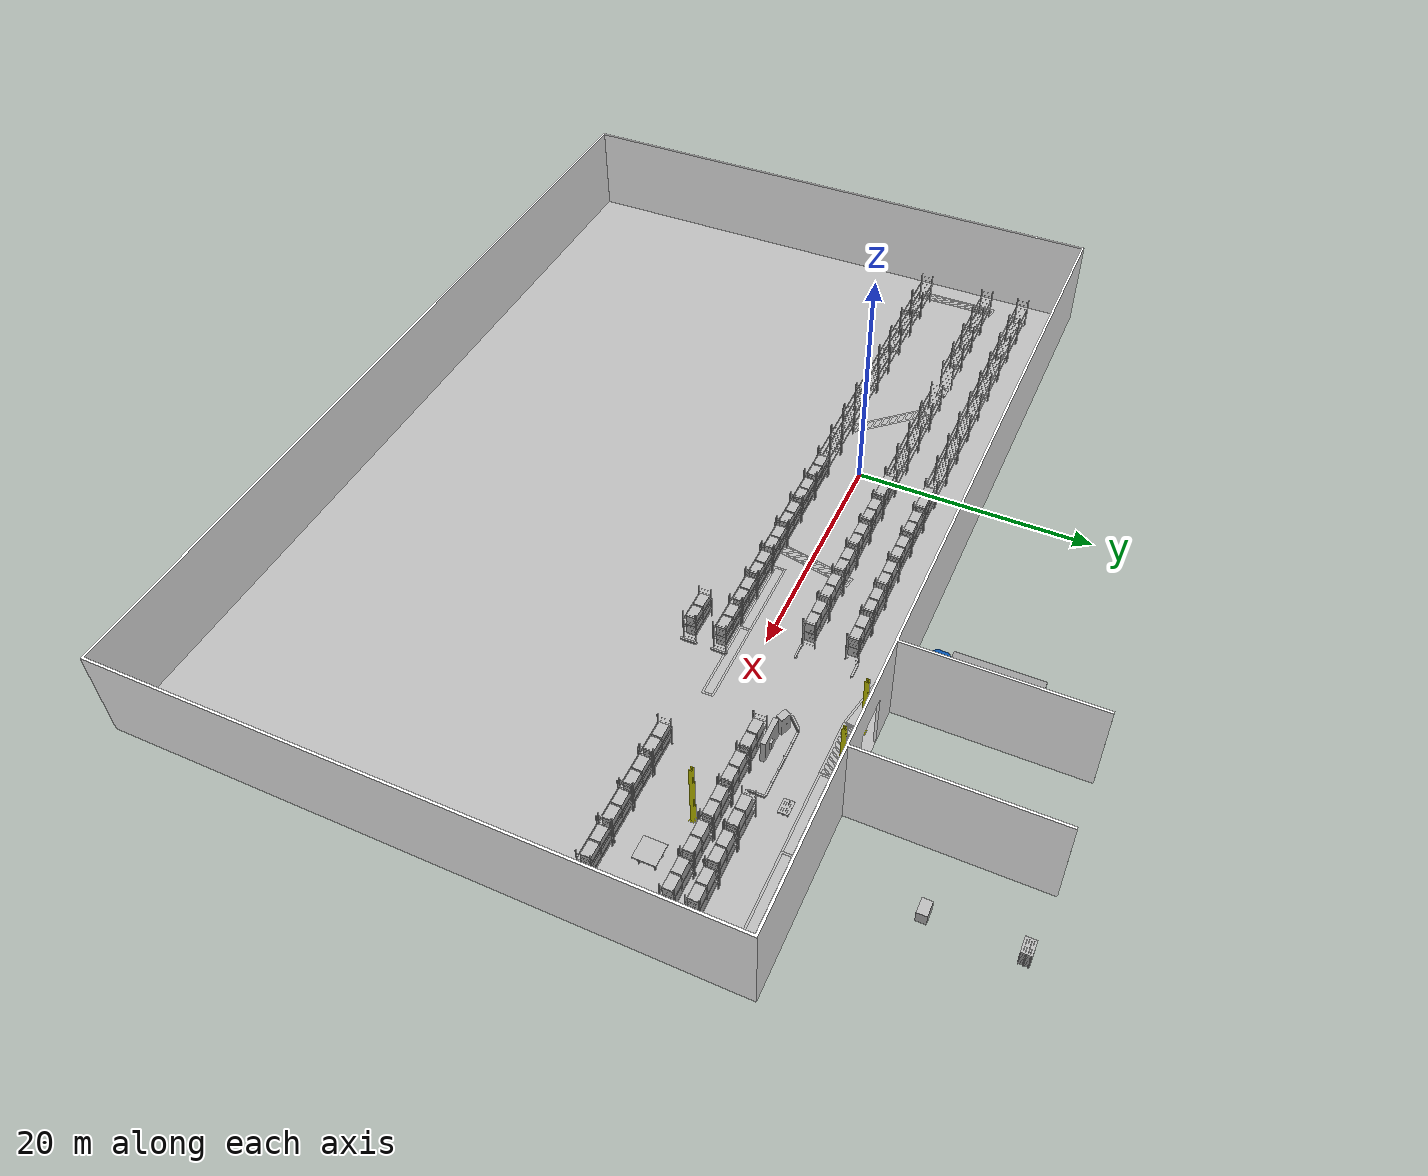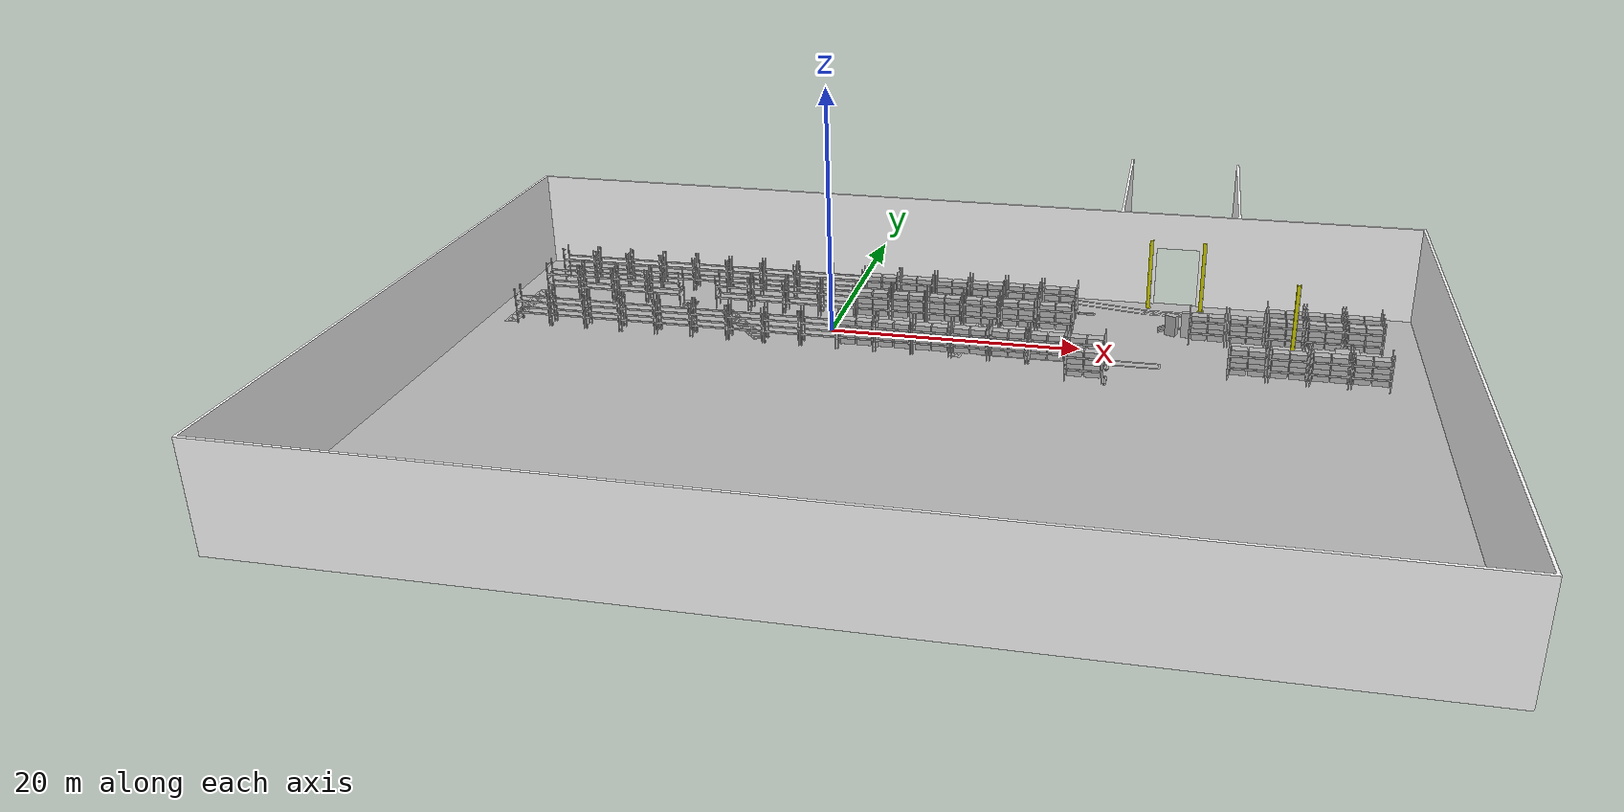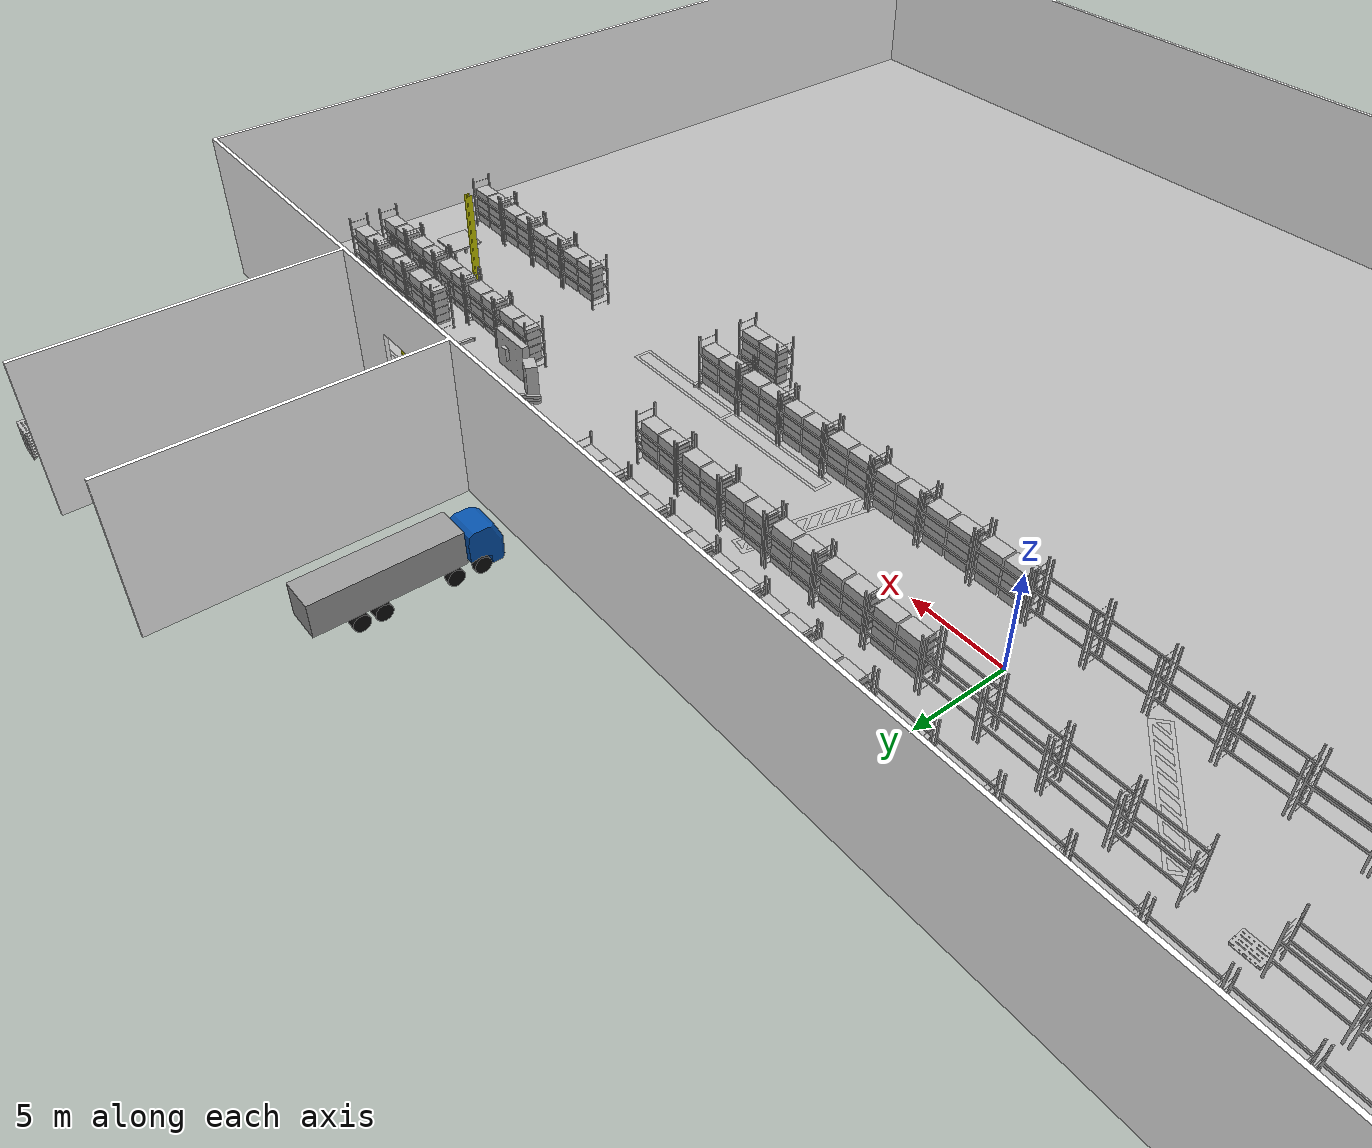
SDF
<sdf version="1.8">
 <world name="default">
  <gravity>0 0 -9.8</gravity>
  <physics type="ode">
   <max_step_size>0.01</max_step_size>
   <real_time_update_rate>100</real_time_update_rate>
   <real_time_factor>1</real_time_factor>
  </physics>
  <plugin filename="gz-sim-physics-system" name="gz::sim::systems::Physics"/>
  <plugin filename="gz-sim-user-commands-system" name="gz::sim::systems::UserCommands"/>
  <plugin filename="gz-sim-scene-broadcaster-system" name="gz::sim::systems::SceneBroadcaster"/>
  <plugin filename="gz-sim-sensors-system" name="gz::sim::systems::Sensors">
   <render_engine>ogre2</render_engine>
  </plugin>
  <plugin filename="gz-sim-imu-system" name="gz::sim::systems::Imu"/>
  <plugin filename="gz-sim-contact-system" name="gz::sim::systems::Contact"/>
  <plugin filename="gz-sim-triggered-publisher-system" name="gz::sim::systems::TriggeredPublisher"/>
  <scene>
   <ambient>1 1 1 1</ambient>
   <background>0.3 0.7 0.9 1</background>
   <shadows>0</shadows>
   <grid>false</grid>
  </scene>
  <light type="directional" name="sun">
   <cast_shadows>false</cast_shadows>
   <pose>0 0.1 10 0 0 0</pose>
   <diffuse>0.8 0.8 0.8 1</diffuse>
   <specular>0.2 0.2 0.2 1</specular>
   <attenuation>
    <range>1000</range>
    <constant>0.9</constant>
    <linear>0.01</linear>
    <quadratic>0.001</quadratic>
   </attenuation>
   <direction>0.1 0.1 -0.9</direction>
  </light>
  <include><uri>model://ground_collision</uri><pose>1.3 -1.4 0 0 0 0</pose></include>
  <include>
   <static>1</static>
   <uri>model://concrete_ground</uri>
   <name>concrete_ground</name>
   <pose>8.80 -14.4 0.0005 0 0 0</pose>
  </include>
  <include><uri>model://factory</uri><pose>1.3 -1.4 0 0 0 0</pose></include>
  <include><uri>model://truck</uri><pose>18.0 16.0 0 0 0 0</pose></include>
  <include>
   <static>1</static>
   <uri>model://hazard_lines_striped</uri>
   <name>hazard_line_1</name>
   <pose>-26.4 0.1 0.001 0 0 0</pose>
  </include>
  <include>
   <static>1</static>
   <uri>model://hazard_lines_striped</uri>
   <name>hazard_line_2_rotated</name>
   <pose>-7.5 -0.16 0.001 0 0 0.73</pose>
  </include>
  <include>
   <static>1</static>
   <uri>model://hazard_lines_striped</uri>
   <name>hazard_line_3_rotated</name>
   <pose>11.2 0.1 0.001 0 0 -0.2</pose>
  </include>
  <include>
   <static>1</static>
   <uri>model://hazard_lines</uri>
   <name>hazard_line_4</name>
   <pose>16.2 -2 0.001 0 0 1.57075</pose>
  </include>
  <include>
   <static>1</static>
   <uri>model://hazard_lines</uri>
   <name>hazard_line_5</name>
   <pose>23 -2 0.001 0 0 1.57075</pose>
  </include>
  <include>
   <static>1</static>
   <uri>model://hazard_lines</uri>
   <name>hazard_line_6</name>
   <pose>14.68 9.81 0.001 0 0 1.57075</pose>
  </include>
  <include>
   <static>1</static>
   <uri>model://hazard_lines</uri>
   <name>hazard_line_7</name>
   <pose>21.47 9.14 0.001 0 0 1.38</pose>
  </include>
  <include>
   <static>1</static>
   <uri>model://hazard_lines_striped_scaled</uri>
   <name>hazard_line_8_rotated_scaled</name>
   <pose>27.07 8.51 0.001 0 0 1.57075</pose>
  </include>
  <include>
   <static>1</static>
   <uri>model://hazard_lines</uri>
   <name>hazard_line_9</name>
   <pose>32.91 8.51 0.001 0 0 1.57075</pose>
  </include>
  <include>
   <static>1</static>
   <uri>model://hazard_lines</uri>
   <name>hazard_line_10</name>
   <pose>39.69 8.51 0.001 0 0 1.57075</pose>
  </include>
  <include>
   <static>1</static>
   <uri>model://railing</uri>
   <name>railing_1</name>
   <pose>19.93 2.53 0.001 0 0 0</pose>
  </include>
  <include>
   <static>1</static>
   <uri>model://railing</uri>
   <name>railing_2</name>
   <pose>22.39 -2.95 0.001 0 0 1.57075</pose>
  </include>
  <include>
   <static>1</static>
   <uri>model://railing</uri>
   <name>railing_3</name>
   <pose>22.39 -5.46 0.001 0 0 1.57075</pose>
  </include>
  <include>
   <static>1</static>
   <uri>model://railing</uri>
   <name>railing_4</name>
   <pose>26.33 4.95 0.001 0 0 -2.356125</pose>
  </include>
  <include>
   <static>1</static>
   <uri>model://railing</uri>
   <name>railing_5</name>
   <pose>26.33 4.95 0.15 0 0 -2.356125</pose>
  </include>
  <include>
   <static>1</static>
   <uri>model://railing</uri>
   <name>railing_6</name>
   <pose>26.33 4.95 0.3 0 0 -2.356125</pose>
  </include>
  <include>
   <static>1</static>
   <uri>model://railing</uri>
   <name>railing_7</name>
   <pose>27.3 5.35 0.001 0 0 -3.1415</pose>
  </include>
  <include>
   <static>1</static>
   <uri>model://railing</uri>
   <name>railing_8</name>
   <pose>28.5 5.35 0.001 0 0 -3.1415</pose>
  </include>
  <include>
   <static>1</static>
   <uri>model://railing</uri>
   <name>railing_9</name>
   <pose>29.7 5.35 0.001 0 0 -3.1415</pose>
  </include>
  <include>
   <static>1</static>
   <uri>model://railing</uri>
   <name>railing_10</name>
   <pose>30.9 5.35 0.001 0 0 -3.1415</pose>
  </include>
  <include>
   <static>1</static>
   <uri>model://railing</uri>
   <name>railing_11</name>
   <pose>32.1 5.35 0.001 0 0 -3.1415</pose>
  </include>
  <include>
   <static>1</static>
   <uri>model://railing</uri>
   <name>railing_12</name>
   <pose>32.73 4.72 0.001 0 0 1.57075</pose>
  </include>
  <include>
   <static>1</static>
   <uri>model://railing</uri>
   <name>railing_13</name>
   <pose>19.93 7.07 0.001 0 0 3.1415</pose>
  </include>
  <include>
   <static>1</static>
   <uri>model://electrical_box</uri>
   <name>electrical_box</name>
   <pose>28.89 4 0.001 0 0 3.1415</pose>
  </include>
  <include>
   <static>1</static>
   <uri>model://blue_cabinet</uri>
   <name>blue_cabinet</name>
   <pose>26.95 4.26 0.001 0 0 -1.96</pose>
  </include>
  <include>
   <static>1</static>
   <uri>model://table</uri>
   <name>table</name>
   <pose>40.3 0.35 0.001 0 0 0</pose>
  </include>
  <include>
   <static>1</static>
   <uri>model://shelf</uri>
   <name>shelf_wall_0_17</name>
   <pose>19.3 -5.9 0.001 0 0 0</pose>
  </include>
  <include>
   <static>1</static>
   <uri>model://shelf</uri>
   <name>shelf_wall_1_2</name>
   <pose>-25.7 -3.4 0.001 0 0 0</pose>
  </include>
  <include>
   <static>1</static>
   <uri>model://shelf</uri>
   <name>shelf_wall_1_3</name>
   <pose>-22.7 -3.4 0.001 0 0 0</pose>
  </include>
  <include>
   <static>1</static>
   <uri>model://shelf</uri>
   <name>shelf_wall_1_4</name>
   <pose>-19.7 -3.4 0.001 0 0 0</pose>
  </include>
  <include>
   <static>1</static>
   <uri>model://shelf</uri>
   <name>shelf_wall_1_5</name>
   <pose>-16.7 -3.4 0.001 0 0 0</pose>
  </include>
  <include>
   <static>1</static>
   <uri>model://shelf</uri>
   <name>shelf_wall_1_6</name>
   <pose>-13.7 -3.4 0.001 0 0 0</pose>
  </include>
  <include>
   <static>1</static>
   <uri>model://shelf</uri>
   <name>shelf_wall_1_7</name>
   <pose>-10.7 -3.4 0.001 0 0 0</pose>
  </include>
  <include>
   <static>1</static>
   <uri>model://shelf</uri>
   <name>shelf_wall_1_8</name>
   <pose>-7.7 -3.4 0.001 0 0 0</pose>
  </include>
  <include>
   <static>1</static>
   <uri>model://shelf</uri>
   <name>shelf_wall_1_9</name>
   <pose>-4.7 -3.4 0.001 0 0 0</pose>
  </include>
  <include>
   <static>1</static>
   <uri>model://shelf</uri>
   <name>shelf_wall_1_10</name>
   <pose>-1.7 -3.4 0.001 0 0 0</pose>
  </include>
  <include>
   <static>1</static>
   <uri>model://shelf</uri>
   <name>shelf_wall_1_11</name>
   <pose>1.3 -3.4 0.001 0 0 0</pose>
  </include>
  <include>
   <static>1</static>
   <uri>model://shelf</uri>
   <name>shelf_wall_1_12</name>
   <pose>4.3 -3.4 0.001 0 0 0</pose>
  </include>
  <include>
   <static>1</static>
   <uri>model://shelf</uri>
   <name>shelf_wall_1_13</name>
   <pose>7.3 -3.4 0.001 0 0 0</pose>
  </include>
  <include>
   <static>1</static>
   <uri>model://shelf</uri>
   <name>shelf_wall_1_14</name>
   <pose>10.3 -3.4 0.001 0 0 0</pose>
  </include>
  <include>
   <static>1</static>
   <uri>model://shelf</uri>
   <name>shelf_wall_1_15</name>
   <pose>13.3 -3.4 0.001 0 0 0</pose>
  </include>
  <include>
   <static>1</static>
   <uri>model://shelf</uri>
   <name>shelf_wall_1_16</name>
   <pose>16.3 -3.4 0.001 0 0 0</pose>
  </include>
  <include>
   <static>1</static>
   <uri>model://shelf</uri>
   <name>shelf_wall_1_17</name>
   <pose>19.3 -3.4 0.001 0 0 0</pose>
  </include>
  <include>
   <static>1</static>
   <uri>model://shelf</uri>
   <name>shelf_wall_1_21</name>
   <pose>31.3 -3.4 0.001 0 0 0</pose>
  </include>
  <include>
   <static>1</static>
   <uri>model://shelf</uri>
   <name>shelf_wall_1_22</name>
   <pose>34.3 -3.4 0.001 0 0 0</pose>
  </include>
  <include>
   <static>1</static>
   <uri>model://shelf</uri>
   <name>shelf_wall_1_23</name>
   <pose>37.3 -3.4 0.001 0 0 0</pose>
  </include>
  <include>
   <static>1</static>
   <uri>model://shelf</uri>
   <name>shelf_wall_1_24</name>
   <pose>40.3 -3.4 0.001 0 0 0</pose>
  </include>
  <include>
   <static>1</static>
   <uri>model://shelf</uri>
   <name>shelf_wall_2_2</name>
   <pose>-25.7 2.6 0.001 0 0 0</pose>
  </include>
  <include>
   <static>1</static>
   <uri>model://shelf</uri>
   <name>shelf_wall_2_3</name>
   <pose>-22.7 2.6 0.001 0 0 0</pose>
  </include>
  <include>
   <static>1</static>
   <uri>model://shelf</uri>
   <name>shelf_wall_2_4</name>
   <pose>-19.7 2.6 0.001 0 0 0</pose>
  </include>
  <include>
   <static>1</static>
   <uri>model://shelf</uri>
   <name>shelf_wall_2_5</name>
   <pose>-16.7 2.6 0.001 0 0 0</pose>
  </include>
  <include>
   <static>1</static>
   <uri>model://shelf</uri>
   <name>shelf_wall_2_7</name>
   <pose>-10.7 2.6 0.001 0 0 0</pose>
  </include>
  <include>
   <static>1</static>
   <uri>model://shelf</uri>
   <name>shelf_wall_2_8</name>
   <pose>-7.7 2.6 0.001 0 0 0</pose>
  </include>
  <include>
   <static>1</static>
   <uri>model://shelf</uri>
   <name>shelf_wall_2_9</name>
   <pose>-4.7 2.6 0.001 0 0 0</pose>
  </include>
  <include>
   <static>1</static>
   <uri>model://shelf</uri>
   <name>shelf_wall_2_10</name>
   <pose>-1.7 2.6 0.001 0 0 0</pose>
  </include>
  <include>
   <static>1</static>
   <uri>model://shelf</uri>
   <name>shelf_wall_2_11</name>
   <pose>1.3 2.6 0.001 0 0 0</pose>
  </include>
  <include>
   <static>1</static>
   <uri>model://shelf</uri>
   <name>shelf_wall_2_12</name>
   <pose>4.3 2.6 0.001 0 0 0</pose>
  </include>
  <include>
   <static>1</static>
   <uri>model://shelf</uri>
   <name>shelf_wall_2_13</name>
   <pose>7.3 2.6 0.001 0 0 0</pose>
  </include>
  <include>
   <static>1</static>
   <uri>model://shelf</uri>
   <name>shelf_wall_2_14</name>
   <pose>10.3 2.6 0.001 0 0 0</pose>
  </include>
  <include>
   <static>1</static>
   <uri>model://shelf</uri>
   <name>shelf_wall_2_15</name>
   <pose>13.3 2.6 0.001 0 0 0</pose>
  </include>
  <include>
   <static>1</static>
   <uri>model://shelf</uri>
   <name>shelf_wall_2_16</name>
   <pose>16.3 2.6 0.001 0 0 0</pose>
  </include>
  <include>
   <static>1</static>
   <uri>model://shelf</uri>
   <name>shelf_wall_2_20</name>
   <pose>28.3 2.6 0.001 0 0 0</pose>
  </include>
  <include>
   <static>1</static>
   <uri>model://shelf</uri>
   <name>shelf_wall_2_21</name>
   <pose>31.3 2.6 0.001 0 0 0</pose>
  </include>
  <include>
   <static>1</static>
   <uri>model://shelf</uri>
   <name>shelf_wall_2_22</name>
   <pose>34.3 2.6 0.001 0 0 0</pose>
  </include>
  <include>
   <static>1</static>
   <uri>model://shelf</uri>
   <name>shelf_wall_2_23</name>
   <pose>37.3 2.6 0.001 0 0 0</pose>
  </include>
  <include>
   <static>1</static>
   <uri>model://shelf</uri>
   <name>shelf_wall_2_24</name>
   <pose>40.3 2.6 0.001 0 0 0</pose>
  </include>
  <include>
   <static>1</static>
   <uri>model://shelf</uri>
   <name>shelf_wall_3_2</name>
   <pose>-25.7 6.1 0.001 0 0 0</pose>
  </include>
  <include>
   <static>1</static>
   <uri>model://shelf</uri>
   <name>shelf_wall_3_3</name>
   <pose>-22.7 6.1 0.001 0 0 0</pose>
  </include>
  <include>
   <static>1</static>
   <uri>model://shelf</uri>
   <name>shelf_wall_3_4</name>
   <pose>-19.7 6.1 0.001 0 0 0</pose>
  </include>
  <include>
   <static>1</static>
   <uri>model://shelf</uri>
   <name>shelf_wall_3_5</name>
   <pose>-16.7 6.1 0.001 0 0 0</pose>
  </include>
  <include>
   <static>1</static>
   <uri>model://shelf</uri>
   <name>shelf_wall_3_6</name>
   <pose>-13.7 6.1 0.001 0 0 0</pose>
  </include>
  <include>
   <static>1</static>
   <uri>model://shelf</uri>
   <name>shelf_wall_3_7</name>
   <pose>-10.7 6.1 0.001 0 0 0</pose>
  </include>
  <include>
   <static>1</static>
   <uri>model://shelf</uri>
   <name>shelf_wall_3_8</name>
   <pose>-7.7 6.1 0.001 0 0 0</pose>
  </include>
  <include>
   <static>1</static>
   <uri>model://shelf</uri>
   <name>shelf_wall_3_9</name>
   <pose>-4.7 6.1 0.001 0 0 0</pose>
  </include>
  <include>
   <static>1</static>
   <uri>model://shelf</uri>
   <name>shelf_wall_3_10</name>
   <pose>-1.7 6.1 0.001 0 0 0</pose>
  </include>
  <include>
   <static>1</static>
   <uri>model://shelf</uri>
   <name>shelf_wall_3_11</name>
   <pose>1.3 6.1 0.001 0 0 0</pose>
  </include>
  <include>
   <static>1</static>
   <uri>model://shelf</uri>
   <name>shelf_wall_3_12</name>
   <pose>4.3 6.1 0.001 0 0 0</pose>
  </include>
  <include>
   <static>1</static>
   <uri>model://shelf</uri>
   <name>shelf_wall_3_13</name>
   <pose>7.3 6.1 0.001 0 0 0</pose>
  </include>
  <include>
   <static>1</static>
   <uri>model://shelf</uri>
   <name>shelf_wall_3_14</name>
   <pose>10.3 6.1 0.001 0 0 0</pose>
  </include>
  <include>
   <static>1</static>
   <uri>model://shelf</uri>
   <name>shelf_wall_3_15</name>
   <pose>13.3 6.1 0.001 0 0 0</pose>
  </include>
  <include>
   <static>1</static>
   <uri>model://shelf</uri>
   <name>shelf_wall_3_16</name>
   <pose>16.3 6.1 0.001 0 0 0</pose>
  </include>
  <include>
   <static>1</static>
   <uri>model://shelf</uri>
   <name>shelf_wall_3_22</name>
   <pose>34.3 4.4 0.001 0 0 0</pose>
  </include>
  <include>
   <static>1</static>
   <uri>model://shelf</uri>
   <name>shelf_wall_3_23</name>
   <pose>37.3 4.4 0.001 0 0 0</pose>
  </include>
  <include>
   <static>1</static>
   <uri>model://shelf</uri>
   <name>shelf_wall_3_24</name>
   <pose>40.3 4.4 0.001 0 0 0</pose>
  </include>
  <include>
   <uri>model://eur_pallet</uri>
   <name>pallet_group_pickup</name>
   <pose>-13.7 2.6 0.001 0 0 0</pose>
  </include>
  <include>
   <uri>model://eur_pallet</uri>
   <name>pallet_group_dropoff</name>
   <pose>32.3 6.6 0.001 0 -0 0</pose>
  </include>
  <include><uri>model://eur_pallet</uri><name>pallet_stack2_n1</name><pose>36.3 24.6 0.1 0 0 0</pose></include>
  <include><uri>model://eur_pallet</uri><name>pallet_stack2_n2</name><pose>36.3 24.6 0.25 0 0 0</pose></include>
  <include><uri>model://eur_pallet</uri><name>pallet_stack2_n3</name><pose>36.3 24.6 0.4 0 0 0</pose></include>
  <include><uri>model://eur_pallet</uri><name>pallet_stack2_n4</name><pose>36.3 24.6 0.55 0 0 0</pose></include>
  <include><uri>model://eur_pallet</uri><name>pallet_stack2_n5</name><pose>36.3 24.6 0.7 0 0 0</pose></include>
  <include><uri>model://eur_pallet</uri><name>pallet_stack2_n6</name><pose>36.3 24.6 0.85 0 0 0</pose></include>
  <include><uri>model://eur_pallet</uri><name>pallet_stack2_n7</name><pose>36.3 24.6 1 0 0 0</pose></include>
  <include><uri>model://eur_pallet</uri><name>pallet_stack2_n8</name><pose>36.3 24.6 1.15 0 0 0</pose></include>
  <include><uri>model://eur_pallet</uri><name>pallet_stack2_n9</name><pose>36.3 24.6 1.3 0 0 0</pose></include>
  <include>
   <uri>model://eur_pallet</uri>
   <name>pallet_stack2_n10</name>
   <pose>36.3 24.6 1.45 0 0 0</pose>
  </include>
  <include><uri>model://box_1185x785x1010</uri><name>box_move</name><pose>36.3 18.6 0.4 0 0 0</pose></include>
  <include>
   <static>1</static>
   <uri>model://support_pole</uri>
   <name>support_pole_move_1</name>
   <pose>36.3 1.6 0.001 0 0 0</pose>
  </include>
  <include>
   <static>1</static>
   <uri>model://support_pole</uri>
   <name>support_pole_move_door_l</name>
   <pose>24.87 9.55 0.001 0 0 0</pose>
  </include>
  <include>
   <static>1</static>
   <uri>model://support_pole</uri>
   <name>support_pole_move_door_r</name>
   <pose>29.2 9.55 0.001 0 0 0</pose>
  </include>
  <include>
   <static>1</static>
   <uri>model://box_1185x785x1010</uri>
   <name>shelf_box_r0_n7_br</name>
   <pose>19.5 -5 0.4 0 0 0</pose>
  </include>
  <include>
   <static>1</static>
   <uri>model://box_1185x785x1010</uri>
   <name>shelf_box_r0_n7_tr</name>
   <pose>19.5 -5 1.4 0 0 0</pose>
  </include>
  <include>
   <static>1</static>
   <uri>model://box_1185x785x1010</uri>
   <name>shelf_box_r0_n7_bl</name>
   <pose>20.8 -5 0.4 0 0 0</pose>
  </include>
  <include>
   <static>1</static>
   <uri>model://box_1185x785x1010</uri>
   <name>shelf_box_r0_n7_tl</name>
   <pose>20.8 -5 1.4 0 0 0</pose>
  </include>
  <include>
   <static>1</static>
   <uri>model://box_1185x785x1010</uri>
   <name>shelf_box_r1_n1_br</name>
   <pose>1.5 -2.5 0.4 0 0 0</pose>
  </include>
  <include>
   <static>1</static>
   <uri>model://box_1185x785x1010</uri>
   <name>shelf_box_r1_n1_tr</name>
   <pose>1.5 -2.5 1.4 0 0 0</pose>
  </include>
  <include>
   <static>1</static>
   <uri>model://box_1185x785x1010</uri>
   <name>shelf_box_r1_n1_bl</name>
   <pose>2.8 -2.5 0.4 0 0 0</pose>
  </include>
  <include>
   <static>1</static>
   <uri>model://box_1185x785x1010</uri>
   <name>shelf_box_r1_n1_tl</name>
   <pose>2.8 -2.5 1.4 0 0 0</pose>
  </include>
  <include>
   <static>1</static>
   <uri>model://box_1185x785x1010</uri>
   <name>shelf_box_r1_n2_br</name>
   <pose>4.5 -2.5 0.4 0 0 0</pose>
  </include>
  <include>
   <static>1</static>
   <uri>model://box_1185x785x1010</uri>
   <name>shelf_box_r1_n2_tr</name>
   <pose>4.5 -2.5 1.4 0 0 0</pose>
  </include>
  <include>
   <static>1</static>
   <uri>model://box_1185x785x1010</uri>
   <name>shelf_box_r1_n2_bl</name>
   <pose>5.8 -2.5 0.4 0 0 0</pose>
  </include>
  <include>
   <static>1</static>
   <uri>model://box_1185x785x1010</uri>
   <name>shelf_box_r1_n2_tl</name>
   <pose>5.8 -2.5 1.4 0 0 0</pose>
  </include>
  <include>
   <static>1</static>
   <uri>model://box_1185x785x1010</uri>
   <name>shelf_box_r1_n3_br</name>
   <pose>7.5 -2.5 0.4 0 0 0</pose>
  </include>
  <include>
   <static>1</static>
   <uri>model://box_1185x785x1010</uri>
   <name>shelf_box_r1_n3_tr</name>
   <pose>7.5 -2.5 1.4 0 0 0</pose>
  </include>
  <include>
   <static>1</static>
   <uri>model://box_1185x785x1010</uri>
   <name>shelf_box_r1_n3_bl</name>
   <pose>8.8 -2.5 0.4 0 0 0</pose>
  </include>
  <include>
   <static>1</static>
   <uri>model://box_1185x785x1010</uri>
   <name>shelf_box_r1_n3_tl</name>
   <pose>8.8 -2.5 1.4 0 0 0</pose>
  </include>
  <include>
   <static>1</static>
   <uri>model://box_1185x785x1010</uri>
   <name>shelf_box_r1_n4_br</name>
   <pose>10.5 -2.5 0.4 0 0 0</pose>
  </include>
  <include>
   <static>1</static>
   <uri>model://box_1185x785x1010</uri>
   <name>shelf_box_r1_n4_tr</name>
   <pose>10.5 -2.5 1.4 0 0 0</pose>
  </include>
  <include>
   <static>1</static>
   <uri>model://box_1185x785x1010</uri>
   <name>shelf_box_r1_n4_bl</name>
   <pose>11.8 -2.5 0.4 0 0 0</pose>
  </include>
  <include>
   <static>1</static>
   <uri>model://box_1185x785x1010</uri>
   <name>shelf_box_r1_n4_tl</name>
   <pose>11.8 -2.5 1.4 0 0 0</pose>
  </include>
  <include>
   <static>1</static>
   <uri>model://box_1185x785x1010</uri>
   <name>shelf_box_r1_n5_br</name>
   <pose>13.5 -2.5 0.4 0 0 0</pose>
  </include>
  <include>
   <static>1</static>
   <uri>model://box_1185x785x1010</uri>
   <name>shelf_box_r1_n5_tr</name>
   <pose>13.5 -2.5 1.4 0 0 0</pose>
  </include>
  <include>
   <static>1</static>
   <uri>model://box_1185x785x1010</uri>
   <name>shelf_box_r1_n5_bl</name>
   <pose>14.8 -2.5 0.4 0 0 0</pose>
  </include>
  <include>
   <static>1</static>
   <uri>model://box_1185x785x1010</uri>
   <name>shelf_box_r1_n5_tl</name>
   <pose>14.8 -2.5 1.4 0 0 0</pose>
  </include>
  <include>
   <static>1</static>
   <uri>model://box_1185x785x1010</uri>
   <name>shelf_box_r1_n6_br</name>
   <pose>16.5 -2.5 0.4 0 0 0</pose>
  </include>
  <include>
   <static>1</static>
   <uri>model://box_1185x785x1010</uri>
   <name>shelf_box_r1_n6_tr</name>
   <pose>16.5 -2.5 1.4 0 0 0</pose>
  </include>
  <include>
   <static>1</static>
   <uri>model://box_1185x785x1010</uri>
   <name>shelf_box_r1_n6_bl</name>
   <pose>17.8 -2.5 0.4 0 0 0</pose>
  </include>
  <include>
   <static>1</static>
   <uri>model://box_1185x785x1010</uri>
   <name>shelf_box_r1_n6_tl</name>
   <pose>17.8 -2.5 1.4 0 0 0</pose>
  </include>
  <include>
   <static>1</static>
   <uri>model://box_1185x785x1010</uri>
   <name>shelf_box_r1_n7_br</name>
   <pose>19.5 -2.5 0.4 0 0 0</pose>
  </include>
  <include>
   <static>1</static>
   <uri>model://box_1185x785x1010</uri>
   <name>shelf_box_r1_n7_tr</name>
   <pose>19.5 -2.5 1.4 0 0 0</pose>
  </include>
  <include>
   <static>1</static>
   <uri>model://box_1185x785x1010</uri>
   <name>shelf_box_r1_n7_bl</name>
   <pose>20.8 -2.5 0.4 0 0 0</pose>
  </include>
  <include>
   <static>1</static>
   <uri>model://box_1185x785x1010</uri>
   <name>shelf_box_r1_n7_tl</name>
   <pose>20.8 -2.5 1.4 0 0 0</pose>
  </include>
  <include>
   <static>1</static>
   <uri>model://box_1185x785x1010</uri>
   <name>shelf_box_r2_n1_br</name>
   <pose>1.5 3.4 0.4 0 0 0</pose>
  </include>
  <include>
   <static>1</static>
   <uri>model://box_1185x785x1010</uri>
   <name>shelf_box_r2_n1_tr</name>
   <pose>1.5 3.4 1.4 0 0 0</pose>
  </include>
  <include>
   <static>1</static>
   <uri>model://box_1185x785x1010</uri>
   <name>shelf_box_r2_n1_bl</name>
   <pose>2.8 3.4 0.4 0 0 0</pose>
  </include>
  <include>
   <static>1</static>
   <uri>model://box_1185x785x1010</uri>
   <name>shelf_box_r2_n1_tl</name>
   <pose>2.8 3.4 1.4 0 0 0</pose>
  </include>
  <include>
   <static>1</static>
   <uri>model://box_1185x785x1010</uri>
   <name>shelf_box_r2_n2_br</name>
   <pose>4.5 3.4 0.4 0 0 0</pose>
  </include>
  <include>
   <static>1</static>
   <uri>model://box_1185x785x1010</uri>
   <name>shelf_box_r2_n2_tr</name>
   <pose>4.5 3.4 1.4 0 0 0</pose>
  </include>
  <include>
   <static>1</static>
   <uri>model://box_1185x785x1010</uri>
   <name>shelf_box_r2_n2_bl</name>
   <pose>5.8 3.4 0.4 0 0 0</pose>
  </include>
  <include>
   <static>1</static>
   <uri>model://box_1185x785x1010</uri>
   <name>shelf_box_r2_n2_tl</name>
   <pose>5.8 3.4 1.4 0 0 0</pose>
  </include>
  <include>
   <static>1</static>
   <uri>model://box_1185x785x1010</uri>
   <name>shelf_box_r2_n3_br</name>
   <pose>7.5 3.4 0.4 0 0 0</pose>
  </include>
  <include>
   <static>1</static>
   <uri>model://box_1185x785x1010</uri>
   <name>shelf_box_r2_n3_tr</name>
   <pose>7.5 3.4 1.4 0 0 0</pose>
  </include>
  <include>
   <static>1</static>
   <uri>model://box_1185x785x1010</uri>
   <name>shelf_box_r2_n3_bl</name>
   <pose>8.8 3.4 0.4 0 0 0</pose>
  </include>
  <include>
   <static>1</static>
   <uri>model://box_1185x785x1010</uri>
   <name>shelf_box_r2_n3_tl</name>
   <pose>8.8 3.4 1.4 0 0 0</pose>
  </include>
  <include>
   <static>1</static>
   <uri>model://box_1185x785x1010</uri>
   <name>shelf_box_r2_n4_br</name>
   <pose>10.5 3.4 0.4 0 0 0</pose>
  </include>
  <include>
   <static>1</static>
   <uri>model://box_1185x785x1010</uri>
   <name>shelf_box_r2_n4_tr</name>
   <pose>10.5 3.4 1.4 0 0 0</pose>
  </include>
  <include>
   <static>1</static>
   <uri>model://box_1185x785x1010</uri>
   <name>shelf_box_r2_n4_bl</name>
   <pose>11.8 3.4 0.4 0 0 0</pose>
  </include>
  <include>
   <static>1</static>
   <uri>model://box_1185x785x1010</uri>
   <name>shelf_box_r2_n4_tl</name>
   <pose>11.8 3.4 1.4 0 0 0</pose>
  </include>
  <include>
   <static>1</static>
   <uri>model://box_1185x785x1010</uri>
   <name>shelf_box_r2_n5_br</name>
   <pose>13.5 3.4 0.4 0 0 0</pose>
  </include>
  <include>
   <static>1</static>
   <uri>model://box_1185x785x1010</uri>
   <name>shelf_box_r2_n5_tr</name>
   <pose>13.5 3.4 1.4 0 0 0</pose>
  </include>
  <include>
   <static>1</static>
   <uri>model://box_1185x785x1010</uri>
   <name>shelf_box_r2_n5_bl</name>
   <pose>14.8 3.4 0.4 0 0 0</pose>
  </include>
  <include>
   <static>1</static>
   <uri>model://box_1185x785x1010</uri>
   <name>shelf_box_r2_n5_tl</name>
   <pose>14.8 3.4 1.4 0 0 0</pose>
  </include>
  <include>
   <static>1</static>
   <uri>model://box_1185x785x1010</uri>
   <name>shelf_box_r2_n6_br</name>
   <pose>16.5 3.4 0.4 0 0 0</pose>
  </include>
  <include>
   <static>1</static>
   <uri>model://box_1185x785x1010</uri>
   <name>shelf_box_r2_n6_tr</name>
   <pose>16.5 3.4 1.4 0 0 0</pose>
  </include>
  <include>
   <static>1</static>
   <uri>model://box_1185x785x1010</uri>
   <name>shelf_box_r2_n6_bl</name>
   <pose>17.8 3.4 0.4 0 0 0</pose>
  </include>
  <include>
   <static>1</static>
   <uri>model://box_1185x785x1010</uri>
   <name>shelf_box_r2_n6_tl</name>
   <pose>17.8 3.4 1.4 0 0 0</pose>
  </include>
  <include>
   <static>1</static>
   <uri>model://box_1185x785x1010</uri>
   <name>shelf_box_r3_n1_br</name>
   <pose>1.5 6.9 0.4 0 0 0</pose>
  </include>
  <include>
   <static>1</static>
   <uri>model://box_1185x785x1010</uri>
   <name>shelf_box_r3_n1_tr</name>
   <pose>1.5 6.9 1.4 0 0 0</pose>
  </include>
  <include>
   <static>1</static>
   <uri>model://box_1185x785x1010</uri>
   <name>shelf_box_r3_n1_bl</name>
   <pose>2.8 6.9 0.4 0 0 0</pose>
  </include>
  <include>
   <static>1</static>
   <uri>model://box_1185x785x1010</uri>
   <name>shelf_box_r3_n1_tl</name>
   <pose>2.8 6.9 1.4 0 0 0</pose>
  </include>
  <include>
   <static>1</static>
   <uri>model://box_1185x785x1010</uri>
   <name>shelf_box_r3_n2_br</name>
   <pose>4.5 6.9 0.4 0 0 0</pose>
  </include>
  <include>
   <static>1</static>
   <uri>model://box_1185x785x1010</uri>
   <name>shelf_box_r3_n2_tr</name>
   <pose>4.5 6.9 1.4 0 0 0</pose>
  </include>
  <include>
   <static>1</static>
   <uri>model://box_1185x785x1010</uri>
   <name>shelf_box_r3_n2_bl</name>
   <pose>5.8 6.9 0.4 0 0 0</pose>
  </include>
  <include>
   <static>1</static>
   <uri>model://box_1185x785x1010</uri>
   <name>shelf_box_r3_n2_tl</name>
   <pose>5.8 6.9 1.4 0 0 0</pose>
  </include>
  <include>
   <static>1</static>
   <uri>model://box_1185x785x1010</uri>
   <name>shelf_box_r3_n3_br</name>
   <pose>7.5 6.9 0.4 0 0 0</pose>
  </include>
  <include>
   <static>1</static>
   <uri>model://box_1185x785x1010</uri>
   <name>shelf_box_r3_n3_tr</name>
   <pose>7.5 6.9 1.4 0 0 0</pose>
  </include>
  <include>
   <static>1</static>
   <uri>model://box_1185x785x1010</uri>
   <name>shelf_box_r3_n3_bl</name>
   <pose>8.8 6.9 0.4 0 0 0</pose>
  </include>
  <include>
   <static>1</static>
   <uri>model://box_1185x785x1010</uri>
   <name>shelf_box_r3_n3_tl</name>
   <pose>8.8 6.9 1.4 0 0 0</pose>
  </include>
  <include>
   <static>1</static>
   <uri>model://box_1185x785x1010</uri>
   <name>shelf_box_r3_n4_br</name>
   <pose>10.5 6.9 0.4 0 0 0</pose>
  </include>
  <include>
   <static>1</static>
   <uri>model://box_1185x785x1010</uri>
   <name>shelf_box_r3_n4_tr</name>
   <pose>10.5 6.9 1.4 0 0 0</pose>
  </include>
  <include>
   <static>1</static>
   <uri>model://box_1185x785x1010</uri>
   <name>shelf_box_r3_n4_bl</name>
   <pose>11.8 6.9 0.4 0 0 0</pose>
  </include>
  <include>
   <static>1</static>
   <uri>model://box_1185x785x1010</uri>
   <name>shelf_box_r3_n4_tl</name>
   <pose>11.8 6.9 1.4 0 0 0</pose>
  </include>
  <include>
   <static>1</static>
   <uri>model://box_1185x785x1010</uri>
   <name>shelf_box_r3_n5_br</name>
   <pose>13.5 6.9 0.4 0 0 0</pose>
  </include>
  <include>
   <static>1</static>
   <uri>model://box_1185x785x1010</uri>
   <name>shelf_box_r3_n5_tr</name>
   <pose>13.5 6.9 1.4 0 0 0</pose>
  </include>
  <include>
   <static>1</static>
   <uri>model://box_1185x785x1010</uri>
   <name>shelf_box_r3_n5_bl</name>
   <pose>14.8 6.9 0.4 0 0 0</pose>
  </include>
  <include>
   <static>1</static>
   <uri>model://box_1185x785x1010</uri>
   <name>shelf_box_r3_n5_tl</name>
   <pose>14.8 6.9 1.4 0 0 0</pose>
  </include>
  <include>
   <static>1</static>
   <uri>model://box_1185x785x1010</uri>
   <name>shelf_box_r3_n6_br</name>
   <pose>16.5 6.9 0.4 0 0 0</pose>
  </include>
  <include>
   <static>1</static>
   <uri>model://box_1185x785x1010</uri>
   <name>shelf_box_r3_n6_tr</name>
   <pose>16.5 6.9 1.4 0 0 0</pose>
  </include>
  <include>
   <static>1</static>
   <uri>model://box_1185x785x1010</uri>
   <name>shelf_box_r3_n6_bl</name>
   <pose>17.8 6.9 0.4 0 0 0</pose>
  </include>
  <include>
   <static>1</static>
   <uri>model://box_1185x785x1010</uri>
   <name>shelf_box_r3_n6_tl</name>
   <pose>17.8 6.9 1.4 0 0 0</pose>
  </include>
  <include>
   <static>1</static>
   <uri>model://box_1185x785x1010</uri>
   <name>shelf_box_r4_n1_br</name>
   <pose>31.5 -2.5 0.4 0 0 0</pose>
  </include>
  <include>
   <static>1</static>
   <uri>model://box_1185x785x1010</uri>
   <name>shelf_box_r4_n1_tr</name>
   <pose>31.5 -2.5 1.4 0 0 0</pose>
  </include>
  <include>
   <static>1</static>
   <uri>model://box_1185x785x1010</uri>
   <name>shelf_box_r4_n1_bl</name>
   <pose>32.8 -2.5 0.4 0 0 0</pose>
  </include>
  <include>
   <static>1</static>
   <uri>model://box_1185x785x1010</uri>
   <name>shelf_box_r4_n1_tl</name>
   <pose>32.8 -2.5 1.4 0 0 0</pose>
  </include>
  <include>
   <static>1</static>
   <uri>model://box_1185x785x1010</uri>
   <name>shelf_box_r4_n2_br</name>
   <pose>34.5 -2.5 0.4 0 0 0</pose>
  </include>
  <include>
   <static>1</static>
   <uri>model://box_1185x785x1010</uri>
   <name>shelf_box_r4_n2_tr</name>
   <pose>34.5 -2.5 1.4 0 0 0</pose>
  </include>
  <include>
   <static>1</static>
   <uri>model://box_1185x785x1010</uri>
   <name>shelf_box_r4_n2_bl</name>
   <pose>35.8 -2.5 0.4 0 0 0</pose>
  </include>
  <include>
   <static>1</static>
   <uri>model://box_1185x785x1010</uri>
   <name>shelf_box_r4_n2_tl</name>
   <pose>35.8 -2.5 1.4 0 0 0</pose>
  </include>
  <include>
   <static>1</static>
   <uri>model://box_1185x785x1010</uri>
   <name>shelf_box_r4_n3_br</name>
   <pose>37.5 -2.5 0.4 0 0 0</pose>
  </include>
  <include>
   <static>1</static>
   <uri>model://box_1185x785x1010</uri>
   <name>shelf_box_r4_n3_tr</name>
   <pose>37.5 -2.5 1.4 0 0 0</pose>
  </include>
  <include>
   <static>1</static>
   <uri>model://box_1185x785x1010</uri>
   <name>shelf_box_r4_n3_bl</name>
   <pose>38.8 -2.5 0.4 0 0 0</pose>
  </include>
  <include>
   <static>1</static>
   <uri>model://box_1185x785x1010</uri>
   <name>shelf_box_r4_n3_tl</name>
   <pose>38.8 -2.5 1.4 0 0 0</pose>
  </include>
  <include>
   <static>1</static>
   <uri>model://box_1185x785x1010</uri>
   <name>shelf_box_r4_n4_br</name>
   <pose>40.5 -2.5 0.4 0 0 0</pose>
  </include>
  <include>
   <static>1</static>
   <uri>model://box_1185x785x1010</uri>
   <name>shelf_box_r4_n4_tr</name>
   <pose>40.5 -2.5 1.4 0 0 0</pose>
  </include>
  <include>
   <static>1</static>
   <uri>model://box_1185x785x1010</uri>
   <name>shelf_box_r4_n4_bl</name>
   <pose>41.8 -2.5 0.4 0 0 0</pose>
  </include>
  <include>
   <static>1</static>
   <uri>model://box_1185x785x1010</uri>
   <name>shelf_box_r4_n4_tl</name>
   <pose>41.8 -2.5 1.4 0 0 0</pose>
  </include>
  <include>
   <static>1</static>
   <uri>model://box_1185x785x1010</uri>
   <name>shelf_box_r5_n1_br</name>
   <pose>28.5 3.4 0.4 0 0 0</pose>
  </include>
  <include>
   <static>1</static>
   <uri>model://box_1185x785x1010</uri>
   <name>shelf_box_r5_n1_tr</name>
   <pose>28.5 3.4 1.4 0 0 0</pose>
  </include>
  <include>
   <static>1</static>
   <uri>model://box_1185x785x1010</uri>
   <name>shelf_box_r5_n1_bl</name>
   <pose>29.8 3.4 0.4 0 0 0</pose>
  </include>
  <include>
   <static>1</static>
   <uri>model://box_1185x785x1010</uri>
   <name>shelf_box_r5_n1_tl</name>
   <pose>29.8 3.4 1.4 0 0 0</pose>
  </include>
  <include>
   <static>1</static>
   <uri>model://box_1185x785x1010</uri>
   <name>shelf_box_r5_n2_br</name>
   <pose>31.5 3.4 0.4 0 0 0</pose>
  </include>
  <include>
   <static>1</static>
   <uri>model://box_1185x785x1010</uri>
   <name>shelf_box_r5_n2_tr</name>
   <pose>31.5 3.4 1.4 0 0 0</pose>
  </include>
  <include>
   <static>1</static>
   <uri>model://box_1185x785x1010</uri>
   <name>shelf_box_r5_n2_bl</name>
   <pose>32.8 3.4 0.4 0 0 0</pose>
  </include>
  <include>
   <static>1</static>
   <uri>model://box_1185x785x1010</uri>
   <name>shelf_box_r5_n2_tl</name>
   <pose>32.8 3.4 1.4 0 0 0</pose>
  </include>
  <include>
   <static>1</static>
   <uri>model://box_1185x785x1010</uri>
   <name>shelf_box_r5_n3_br</name>
   <pose>34.5 3.4 0.4 0 0 0</pose>
  </include>
  <include>
   <static>1</static>
   <uri>model://box_1185x785x1010</uri>
   <name>shelf_box_r5_n3_tr</name>
   <pose>34.5 3.4 1.4 0 0 0</pose>
  </include>
  <include>
   <static>1</static>
   <uri>model://box_1185x785x1010</uri>
   <name>shelf_box_r5_n3_bl</name>
   <pose>35.8 3.4 0.4 0 0 0</pose>
  </include>
  <include>
   <static>1</static>
   <uri>model://box_1185x785x1010</uri>
   <name>shelf_box_r5_n3_tl</name>
   <pose>35.8 3.4 1.4 0 0 0</pose>
  </include>
  <include>
   <static>1</static>
   <uri>model://box_1185x785x1010</uri>
   <name>shelf_box_r5_n4_br</name>
   <pose>37.5 3.4 0.4 0 0 0</pose>
  </include>
  <include>
   <static>1</static>
   <uri>model://box_1185x785x1010</uri>
   <name>shelf_box_r5_n4_tr</name>
   <pose>37.5 3.4 1.4 0 0 0</pose>
  </include>
  <include>
   <static>1</static>
   <uri>model://box_1185x785x1010</uri>
   <name>shelf_box_r5_n4_bl</name>
   <pose>38.8 3.4 0.4 0 0 0</pose>
  </include>
  <include>
   <static>1</static>
   <uri>model://box_1185x785x1010</uri>
   <name>shelf_box_r5_n4_tl</name>
   <pose>38.8 3.4 1.4 0 0 0</pose>
  </include>
  <include>
   <static>1</static>
   <uri>model://box_1185x785x1010</uri>
   <name>shelf_box_r5_n5_br</name>
   <pose>40.5 3.4 0.4 0 0 0</pose>
  </include>
  <include>
   <static>1</static>
   <uri>model://box_1185x785x1010</uri>
   <name>shelf_box_r5_n5_tr</name>
   <pose>40.5 3.4 1.4 0 0 0</pose>
  </include>
  <include>
   <static>1</static>
   <uri>model://box_1185x785x1010</uri>
   <name>shelf_box_r5_n5_bl</name>
   <pose>41.8 3.4 0.4 0 0 0</pose>
  </include>
  <include>
   <static>1</static>
   <uri>model://box_1185x785x1010</uri>
   <name>shelf_box_r5_n5_tl</name>
   <pose>41.8 3.4 1.4 0 0 0</pose>
  </include>
  <include>
   <static>1</static>
   <uri>model://box_1185x785x1010</uri>
   <name>shelf_box_r6_n3_br</name>
   <pose>34.5 5.2 0.4 0 0 0</pose>
  </include>
  <include>
   <static>1</static>
   <uri>model://box_1185x785x1010</uri>
   <name>shelf_box_r6_n3_tr</name>
   <pose>34.5 5.2 1.4 0 0 0</pose>
  </include>
  <include>
   <static>1</static>
   <uri>model://box_1185x785x1010</uri>
   <name>shelf_box_r6_n3_bl</name>
   <pose>35.8 5.2 0.4 0 0 0</pose>
  </include>
  <include>
   <static>1</static>
   <uri>model://box_1185x785x1010</uri>
   <name>shelf_box_r6_n3_tl</name>
   <pose>35.8 5.2 1.4 0 0 0</pose>
  </include>
  <include>
   <static>1</static>
   <uri>model://box_1185x785x1010</uri>
   <name>shelf_box_r6_n4_br</name>
   <pose>37.5 5.2 0.4 0 0 0</pose>
  </include>
  <include>
   <static>1</static>
   <uri>model://box_1185x785x1010</uri>
   <name>shelf_box_r6_n4_tr</name>
   <pose>37.5 5.2 1.4 0 0 0</pose>
  </include>
  <include>
   <static>1</static>
   <uri>model://box_1185x785x1010</uri>
   <name>shelf_box_r6_n4_bl</name>
   <pose>38.8 5.2 0.4 0 0 0</pose>
  </include>
  <include>
   <static>1</static>
   <uri>model://box_1185x785x1010</uri>
   <name>shelf_box_r6_n4_tl</name>
   <pose>38.8 5.2 1.4 0 0 0</pose>
  </include>
  <include>
   <static>1</static>
   <uri>model://box_1185x785x1010</uri>
   <name>shelf_box_r6_n5_br</name>
   <pose>40.5 5.2 0.4 0 0 0</pose>
  </include>
  <include>
   <static>1</static>
   <uri>model://box_1185x785x1010</uri>
   <name>shelf_box_r6_n5_tr</name>
   <pose>40.5 5.2 1.4 0 0 0</pose>
  </include>
  <include>
   <static>1</static>
   <uri>model://box_1185x785x1010</uri>
   <name>shelf_box_r6_n5_bl</name>
   <pose>41.8 5.2 0.4 0 0 0</pose>
  </include>
  <include>
   <static>1</static>
   <uri>model://box_1185x785x1010</uri>
   <name>shelf_box_r6_n5_tl</name>
   <pose>41.8 5.2 1.4 0 0 0</pose>
  </include>
 </world>
 <plugin name="gazebo_ros_api_plugin" filename="libgazebo_ros_api_plugin.so"/>
</sdf>

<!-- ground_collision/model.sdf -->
<sdf version="1.9">
<model name="ground_collision">
  <static>true</static>
    <link name="link">
      <collision name="collision">
        <geometry>
          <plane>
            <normal>0 0 1</normal>
            <size>100 100</size>
          </plane>
        </geometry>
        <surface>
          <friction>
            <ode>
              <mu>100</mu>
              <mu2>50</mu2>
            </ode>
          </friction>
        </surface>
      </collision>
    </link>
  </model>
</sdf>

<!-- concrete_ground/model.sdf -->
<sdf version="1.7">
  <model name="concrete_ground" canonical_link="concrete_ground_link">
    <link name="concrete_ground">
      <visual name="visual">
        <pose>0 0 0 1.5708 0 0</pose>
        <geometry>
          <mesh>
            <uri>model://concrete_ground/meshes/concrete_ground.obj</uri>
            <scale>1 1 1</scale>
          </mesh>
        </geometry>
      </visual>
    </link>
  </model>
</sdf>

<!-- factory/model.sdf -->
<sdf version="1.8">
  <model name="factory">
    <plugin filename="gz-sim-label-system" name="gz::sim::systems::Label">
      <label>2</label>
    </plugin>
    <static>true</static>
    <link name="building">
      <visual name="visual">
        <geometry>
          <mesh>
            <uri>model://factory/meshes/factory_with_entrence.dae</uri>
          </mesh>
        </geometry>
      </visual>
      <collision name="collision">
        <geometry>
          <mesh>
            <uri>model://factory/meshes/factory_with_entrence.dae</uri>
          </mesh>
        </geometry>
      </collision>

    </link>
    <plugin name="gz::sim::systems::Label" filename="gz-sim-label-system">
      <label>2</label>
    </plugin>
  </model>
</sdf>

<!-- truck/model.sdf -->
<sdf version="1.7">
  <model name="truck">
    <static>false</static>

    <!-- Link Definition -->
    <link name="head">
      <!-- Visual Element -->
      <visual name="head_visual">
        <geometry>
          <mesh>
            <uri>model://truck/meshes/head.dae</uri>
            <scale>1 1 1</scale>
          </mesh>
        </geometry>
        <material>
          <ambient>0.02 0.32 0.67 1</ambient>
          <diffuse>0.02 0.32 0.67 1</diffuse>
          <emissive>0.1 0 0.1 1</emissive>
        </material>
      </visual>

      <!-- Collision Element -->
      <collision name="head_collision">
        <geometry>
          <mesh>
            <uri>model://truck/meshes/head.dae</uri>
            <scale>1 1 1</scale>
          </mesh>
        </geometry>
        <surface>
          <contact>
            <ode/>
          </contact>
          <bounce/>
          <friction>
            <ode/>
          </friction>
        </surface>
      </collision>

      <!-- Inertial Properties -->
      <inertial>
        <mass>10.0</mass>
        <inertia>
          <ixx>1.0</ixx>
          <ixy>0.0</ixy>
          <ixz>0.0</ixz>
          <iyy>1.0</iyy>
          <iyz>0.0</iyz>
          <izz>1.0</izz>
        </inertia>
      </inertial>
    </link>
    <link name="box">
      <!-- Visual Element -->
      <visual name="box_visual">
        <geometry>
          <mesh>
            <uri>model://truck/meshes/box.dae</uri>
            <scale>1 1 1</scale>
          </mesh>
        </geometry>
        <material>
            <ambient>0.6 0.6 0.6 1</ambient>
            <diffuse>0.6 0.6 0.6 1</diffuse>
            <emissive>0.1 0.1 0.1 1</emissive>
        </material>
      </visual>

      <!-- Collision Element -->
      <collision name="box_collision">
        <geometry>
          <mesh>
            <uri>model://truck/meshes/box.dae</uri>
            <scale>1 1 1</scale>
          </mesh>
        </geometry>
        <surface>
          <contact>
            <ode/>
          </contact>
          <bounce/>
          <friction>
            <ode/>
          </friction>
        </surface>
      </collision>

      <!-- Inertial Properties -->
      <inertial>
        <mass>10.0</mass>
        <inertia>
          <ixx>1.0</ixx>
          <ixy>0.0</ixy>
          <ixz>0.0</ixz>
          <iyy>1.0</iyy>
          <iyz>0.0</iyz>
          <izz>1.0</izz>
        </inertia>
      </inertial>
    </link>

    <link name="wheels">
      <!-- Visual Element -->
      <visual name="wheels_visual">
        <geometry>
          <mesh>
            <uri>model://truck/meshes/wheels.dae</uri>
            <scale>1 1 1</scale>
          </mesh>
        </geometry>
        <material>
          <ambient>0.05 0.05 0.05 1</ambient>
          <diffuse>0.05 0.05 0.05 1</diffuse>
          <emissive>0.1 0.1 0.1 1</emissive>
        </material>
      </visual>

      <!-- Collision Element -->
      <collision name="wheels_collision">
        <geometry>
          <mesh>
            <uri>model://truck/meshes/wheels.dae</uri>
            <scale>1 1 1</scale>
          </mesh>
        </geometry>
        <surface>
          <contact>
            <ode/>
          </contact>
          <bounce/>
          <friction>
            <ode/>
          </friction>
        </surface>
      </collision>

      <!-- Inertial Properties -->
      <inertial>
        <mass>10.0</mass>
        <inertia>
          <ixx>1.0</ixx>
          <ixy>0.0</ixy>
          <ixz>0.0</ixz>
          <iyy>1.0</iyy>
          <iyz>0.0</iyz>
          <izz>1.0</izz>
        </inertia>
      </inertial>
    </link>

    <link name="bottom">
      <!-- Visual Element -->
      <visual name="bottom_visual">
        <geometry>
          <mesh>
            <uri>model://truck/meshes/bottom.dae</uri>
            <scale>1 1 1</scale>
          </mesh>
        </geometry>
        <material>
          <ambient>0.05 0.05 0.05 1</ambient>
          <diffuse>0.05 0.05 0.05 1</diffuse>
          <emissive>0.1 0.1 0.1 1</emissive>
        </material>
      </visual>

      <!-- Collision Element -->
      <collision name="bottom_collision">
        <geometry>
          <mesh>
            <uri>model://truck/meshes/bottom.dae</uri>
            <scale>1 1 1</scale>
          </mesh>
        </geometry>
        <surface>
          <contact>
            <ode/>
          </contact>
          <bounce/>
          <friction>
            <ode/>
          </friction>
        </surface>
      </collision>

      <!-- Inertial Properties -->
      <inertial>
        <mass>10.0</mass>
        <inertia>
          <ixx>1.0</ixx>
          <ixy>0.0</ixy>
          <ixz>0.0</ixz>
          <iyy>1.0</iyy>
          <iyz>0.0</iyz>
          <izz>1.0</izz>
        </inertia>
      </inertial>
    </link>
    <!-- Joint Definitions -->
    <joint name="head_to_box" type="fixed">
      <parent>head</parent>
      <child>box</child>
    </joint>

    <joint name="head_to_wheels" type="fixed">
      <parent>head</parent>
      <child>wheels</child>
    </joint>

    <joint name="head_to_bottom" type="fixed">
      <parent>head</parent>
      <child>bottom</child>
    </joint>
  </model>
</sdf>

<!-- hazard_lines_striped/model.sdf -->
<sdf version="1.7">
  <model name="hazard_lines_striped" canonical_link="node0_link">
    <link name="node0_link">
      <visual name="node0">
        <pose>0 0 0 1.5708 0 0</pose>
        <geometry>
          <mesh>
            <uri>model://hazard_lines_striped/meshes/hazard_lines_striped.obj</uri>
            <scale>1 1 1</scale>
          </mesh>
        </geometry>
      </visual>
    </link>
  </model>
</sdf>

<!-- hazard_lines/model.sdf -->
<sdf version="1.7">
  <model name="hazard_lines" canonical_link="node0_link">
    <link name="node0_link">
      <visual name="node0">
        <pose>0 0 0 1.5708 0 0</pose>
        <geometry>
          <mesh>
            <uri>model://hazard_lines/meshes/hazard_lines.obj</uri>
            <scale>1 1 1</scale>
          </mesh>
        </geometry>
      </visual>
    </link>
  </model>
</sdf>

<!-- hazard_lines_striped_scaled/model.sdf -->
<sdf version="1.7">
  <model name="hazard_lines_striped_scaled" canonical_link="node0_link">
    <link name="node0_link">
      <visual name="node0">
        <pose>0 0 0 1.5708 0 0</pose>
        <geometry>
          <mesh>
            <uri>model://hazard_lines_striped_scaled/meshes/hazard_lines_striped_scaled.obj</uri>
            <scale>1 1 0.69 </scale>
          </mesh>
        </geometry>
      </visual>
    </link>
  </model>
</sdf>

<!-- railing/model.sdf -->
<sdf version="1.7">
  <model name="railing" canonical_link="railing_link">
    <link name="railing_link">
      <visual name="visual">
        <pose>0 0 0 1.5708 0 0</pose>
        <geometry>
          <mesh>
            <uri>model://railing/meshes/railing.obj</uri>
            <scale>1 1 1</scale>
          </mesh>
        </geometry>
      </visual>

      <collision name="collision">
        <pose>0 0 0 1.5708 0 0</pose>
        <geometry>
          <mesh>
            <uri>model://railing/meshes/railing.obj</uri>
            <scale>1 1 1</scale>
          </mesh>
        </geometry>
      </collision>
    </link>
  </model>
</sdf>

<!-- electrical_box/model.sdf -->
<sdf version="1.7">
  <model name="electrical_box" canonical_link="electrical_box_link">
    <link name="electrical_box_link">
      <visual name="visual">
        <pose>0 0 0 1.5708 0 0</pose>
        <geometry>
          <mesh>
            <uri>model://electrical_box/meshes/electrical_box.obj</uri>
            <scale>1 1 1</scale>
          </mesh>
        </geometry>
      </visual>

      <collision name="collision">
        <pose>0 0 0 1.5708 0 0</pose>
        <geometry>
          <mesh>
            <uri>model://electrical_box/meshes/electrical_box.obj</uri>
            <scale>1 1 1</scale>
          </mesh>
        </geometry>
      </collision>
    </link>
  </model>
</sdf>

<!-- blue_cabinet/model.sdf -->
<sdf version="1.7">
  <model name="blue_cabinet" canonical_link="blue_cabinet_link">
    <link name="blue_cabinet_link">
      <visual name="visual">
        <pose>0 0 0 1.5708 0 0</pose>
        <geometry>
          <mesh>
            <uri>model://blue_cabinet/meshes/blue_cabinet.obj</uri>
            <scale>1 1 1</scale>
          </mesh>
        </geometry>
      </visual>

      <collision name="collision">
        <pose>0 0 0 1.5708 0 0</pose>
        <geometry>
          <mesh>
            <uri>model://blue_cabinet/meshes/blue_cabinet.obj</uri>
            <scale>1 1 1</scale>
          </mesh>
        </geometry>
      </collision>
    </link>
  </model>
</sdf>

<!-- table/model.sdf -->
<sdf version="1.7">
  <model name="table" canonical_link="table_link">
    <link name="table_link">
      <visual name="visual">
        <pose>0 0 0 1.5708 0 0</pose>
        <geometry>
          <mesh>
            <uri>model://table/meshes/table.obj</uri>
            <scale>1 1 1</scale>
          </mesh>
        </geometry>
      </visual>

      <collision name="collision">
        <pose>0 0 0 1.5708 0 0</pose>
        <geometry>
          <mesh>
            <uri>model://table/meshes/table.obj</uri>
            <scale>1 1 1</scale>
          </mesh>
        </geometry>
      </collision>
    </link>
  </model>
</sdf>

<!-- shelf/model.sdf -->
<sdf version="1.9">
  <model name="shelf" canonical_link="node0_link">

    <link name="node0_link">
      <inertial>
        <inertia>
          <ixx>24.93052</ixx>
          <ixy>0</ixy>
          <ixz>0</ixz>
          <iyy>54.42990</iyy>
          <iyz>0</iyz>
          <izz>42.61899</izz>
        </inertia>
        <pose>1.44044 0.43986 1.49318 0 0 0</pose>
        <mass>40.00000</mass>
      </inertial>

      <visual name="node0">
        <pose>0 0 0 0 0 0</pose>
        <geometry>
          <mesh>
            <uri>model://shelf/meshes/textured_shelf_low_poly.dae</uri>
            <scale>1.00000 1.00000 1.00000</scale>
          </mesh>
        </geometry>
      </visual>
    </link>

    <plugin filename="gz-sim-label-system" name="gz::sim::systems::Label">
      <label>10</label>
    </plugin>

    <link name="collision_shelf_1">
      <inertial>
        <mass>0.0001</mass>
        <inertia>
          <ixx>1e-6</ixx>
          <iyy>1e-6</iyy>
          <izz>1e-6</izz>
          <ixy>0</ixy>
          <ixz>0</ixz>
          <iyz>0</iyz>
        </inertia>
      </inertial>
      <collision name="collision_shelf_1">
        <pose>1.45 0.45 0 0 0 0</pose>
        <geometry>
          <box>
            <size>2.7 1.2 0.13</size>
          </box>
        </geometry>
        <surface>
          <friction>
            <ode>
              <mu>1</mu>
              <mu2>1</mu2>
              <slip1>0</slip1>
              <slip2>0</slip2>
            </ode>
          </friction>
          <contact>
            <ode>
              <soft_cfm>0</soft_cfm>
              <soft_erp>0.2</soft_erp>
              <kp>1e+13</kp>
              <kd>1</kd>
              <max_vel>0.01</max_vel>
              <min_depth>0</min_depth>
            </ode>
          </contact>
        </surface>
      </collision>
    </link>

    <link name="collision_shelf_2">
      <inertial>
        <mass>0.0001</mass>
        <inertia>
          <ixx>1e-6</ixx>
          <iyy>1e-6</iyy>
          <izz>1e-6</izz>
          <ixy>0</ixy>
          <ixz>0</ixz>
          <iyz>0</iyz>
        </inertia>
      </inertial>
      <collision name="collision_shelf_2">
        <pose>1.45 0.45 1 0 0 0</pose>
        <geometry>
          <box>
            <size>2.7 1.2 0.13</size>
          </box>
        </geometry>
        <surface>
          <friction>
            <ode>
              <mu>1</mu>
              <mu2>1</mu2>
              <slip1>0</slip1>
              <slip2>0</slip2>
            </ode>
          </friction>
          <contact>
            <ode>
              <soft_cfm>0</soft_cfm>
              <soft_erp>0.2</soft_erp>
              <kp>1e+13</kp>
              <kd>1</kd>
              <max_vel>0.01</max_vel>
              <min_depth>0</min_depth>
            </ode>
          </contact>
        </surface>
      </collision>
    </link>

    <link name="collision_shelf_3">
      <inertial>
        <mass>0.0001</mass>
        <inertia>
          <ixx>1e-6</ixx>
          <iyy>1e-6</iyy>
          <izz>1e-6</izz>
          <ixy>0</ixy>
          <ixz>0</ixz>
          <iyz>0</iyz>
        </inertia>
      </inertial>
      <collision name="collision_shelf_3">
        <pose>1.45 0.45 2 0 0 0</pose>
        <geometry>
          <box>
            <size>2.7 1.2 0.13</size>
          </box>
        </geometry>
        <surface>
          <friction>
            <ode>
              <mu>1</mu>
              <mu2>1</mu2>
              <slip1>0</slip1>
              <slip2>0</slip2>
            </ode>
          </friction>
          <contact>
            <ode>
              <soft_cfm>0</soft_cfm>
              <soft_erp>0.2</soft_erp>
              <kp>1e+13</kp>
              <kd>1</kd>
              <max_vel>0.01</max_vel>
              <min_depth>0</min_depth>
            </ode>
          </contact>
        </surface>
      </collision>
    </link>

    <joint name="fixed_joint_1" type="fixed">
      <parent>node0_link</parent>
      <child>collision_shelf_1</child>
    </joint>

    <joint name="fixed_joint_2" type="fixed">
      <parent>node0_link</parent>
      <child>collision_shelf_2</child>
    </joint>

    <joint name="fixed_joint_3" type="fixed">
      <parent>node0_link</parent>
      <child>collision_shelf_3</child>
    </joint>

  </model>
</sdf>
